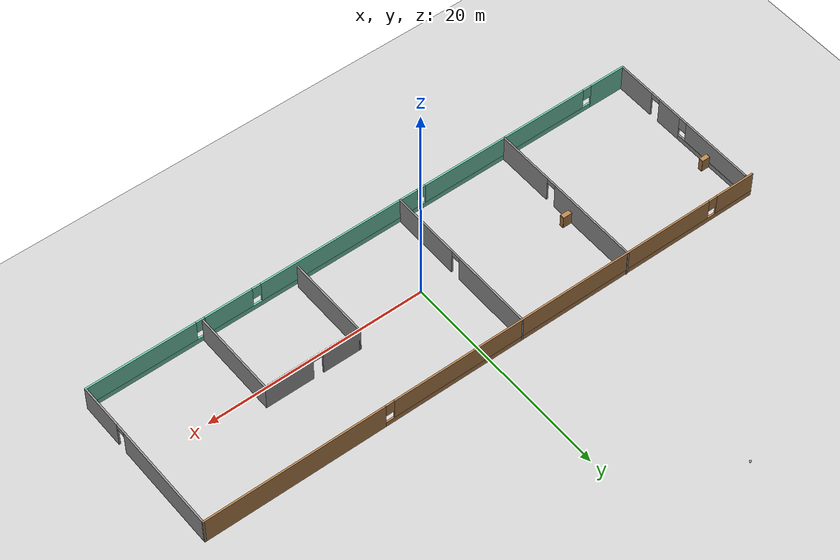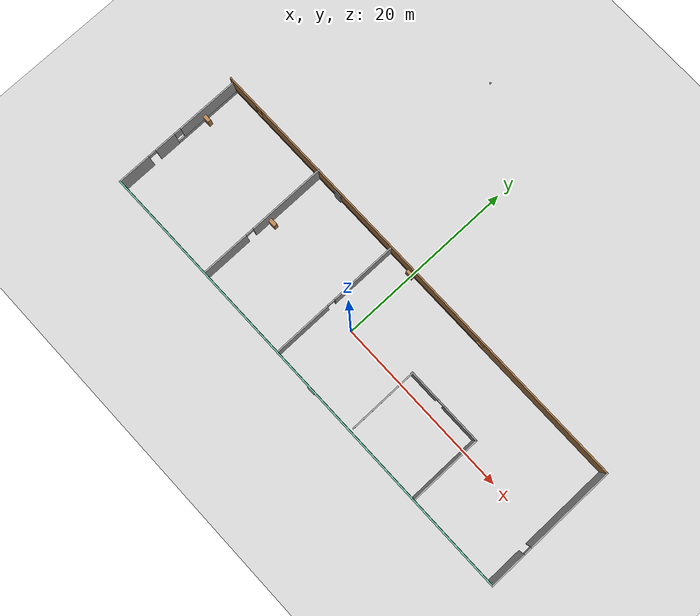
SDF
<sdf version="1.7">
 <world name="default">
  <model name="ground_plane">
   <static>1</static>
   <link name="link">
    <collision name="collision">
     <geometry><plane><normal>0 0 1</normal><size>100 100</size></plane></geometry>
     <surface>
      <contact><collide_bitmask>65535</collide_bitmask></contact>
      <friction><ode><mu>100</mu><mu2>50</mu2></ode></friction>
     </surface>
    </collision>
    <visual name="visual">
     <cast_shadows>0</cast_shadows>
     <geometry><plane><normal>0 0 1</normal><size>100 100</size></plane></geometry>
     <material>
      <script><uri>file://media/materials/scripts/gazebo.material</uri><name>Gazebo/Grey</name></script>
     </material>
    </visual>
   </link>
  </model>
  <model name="mynewbuilding">
   <pose>-0.0857 0.8338 0 0 -0 0</pose>
   <link name="Door_0">
    <collision name="Door_0_Collision">
     <geometry><box><size>0.9 0.17 2</size></box></geometry>
     <pose>0 0 1 0 -0 0</pose>
    </collision>
    <visual name="Door_0_Visual">
     <pose>0 0 1 0 -0 0</pose>
     <geometry><box><size>0.9 0.17 2</size></box></geometry>
     <material>
      <script><uri>file://media/materials/scripts/gazebo.material</uri><name>Gazebo/Grey</name></script>
     </material>
    </visual>
    <pose>-10.5562 7.30056 0 0 -0 0</pose>
   </link>
   <link name="Door_2">
    <collision name="Door_2_Collision">
     <geometry><box><size>0.9 0.17 2</size></box></geometry>
     <pose>0 0 1 0 -0 0</pose>
    </collision>
    <visual name="Door_2_Visual">
     <pose>0 0 1 0 -0 0</pose>
     <geometry><box><size>0.9 0.17 2</size></box></geometry>
     <material>
      <script><uri>file://media/materials/scripts/gazebo.material</uri><name>Gazebo/Grey</name></script>
     </material>
    </visual>
    <pose>1.7212 -7.54488 0 0 -0 0</pose>
   </link>
   <link name="Wall_0">
    <pose>0.25 -7.44583 0 0 -0 0</pose>
    <visual name="Wall_0_Visual_0">
     <pose>-24.2845 0 1.25 0 -0 0</pose>
     <geometry><box><size>3.43107 0.15 2.5</size></box></geometry>
     <material>
      <script><uri>file://media/materials/scripts/gazebo.material</uri><name>Gazebo/Grey</name></script>
      <ambient>0.435294 0.796078 0.67451 1</ambient>
     </material>
     <meta><layer>0</layer></meta>
    </visual>
    <collision name="Wall_0_Collision_0">
     <geometry><box><size>3.43107 0.15 2.5</size></box></geometry>
     <pose>-24.2845 0 1.25 0 -0 0</pose>
    </collision>
    <visual name="Wall_0_Visual_1">
     <pose>1.71554 0 0.25 0 -0 0</pose>
     <geometry><box><size>48.5689 0.15 0.5</size></box></geometry>
     <material>
      <script><uri>file://media/materials/scripts/gazebo.material</uri><name>Gazebo/Grey</name></script>
      <ambient>0.435294 0.796078 0.67451 1</ambient>
     </material>
     <meta><layer>0</layer></meta>
    </visual>
    <collision name="Wall_0_Collision_1">
     <geometry><box><size>48.5689 0.15 0.5</size></box></geometry>
     <pose>1.71554 0 0.25 0 -0 0</pose>
    </collision>
    <visual name="Wall_0_Visual_2">
     <pose>-13.7436 0 1.5 0 -0 0</pose>
     <geometry><box><size>16.0506 0.15 2</size></box></geometry>
     <material>
      <script><uri>file://media/materials/scripts/gazebo.material</uri><name>Gazebo/Grey</name></script>
      <ambient>0.435294 0.796078 0.67451 1</ambient>
     </material>
     <meta><layer>0</layer></meta>
    </visual>
    <collision name="Wall_0_Collision_2">
     <geometry><box><size>16.0506 0.15 2</size></box></geometry>
     <pose>-13.7436 0 1.5 0 -0 0</pose>
    </collision>
    <visual name="Wall_0_Visual_3">
     <pose>2.57933 0 1.5 0 -0 0</pose>
     <geometry><box><size>14.9953 0.15 2</size></box></geometry>
     <material>
      <script><uri>file://media/materials/scripts/gazebo.material</uri><name>Gazebo/Grey</name></script>
      <ambient>0.435294 0.796078 0.67451 1</ambient>
     </material>
     <meta><layer>0</layer></meta>
    </visual>
    <collision name="Wall_0_Collision_3">
     <geometry><box><size>14.9953 0.15 2</size></box></geometry>
     <pose>2.57933 0 1.5 0 -0 0</pose>
    </collision>
    <visual name="Wall_0_Visual_4">
     <pose>13.0626 0 1.5 0 -0 0</pose>
     <geometry><box><size>4.37128 0.15 2</size></box></geometry>
     <material>
      <script><uri>file://media/materials/scripts/gazebo.material</uri><name>Gazebo/Grey</name></script>
      <ambient>0.435294 0.796078 0.67451 1</ambient>
     </material>
     <meta><layer>0</layer></meta>
    </visual>
    <collision name="Wall_0_Collision_4">
     <geometry><box><size>4.37128 0.15 2</size></box></geometry>
     <pose>13.0626 0 1.5 0 -0 0</pose>
    </collision>
    <visual name="Wall_0_Visual_5">
     <pose>21.0241 0 1.5 0 -0 0</pose>
     <geometry><box><size>9.95176 0.15 2</size></box></geometry>
     <material>
      <script><uri>file://media/materials/scripts/gazebo.material</uri><name>Gazebo/Grey</name></script>
      <ambient>0.435294 0.796078 0.67451 1</ambient>
     </material>
     <meta><layer>0</layer></meta>
    </visual>
    <collision name="Wall_0_Collision_5">
     <geometry><box><size>9.95176 0.15 2</size></box></geometry>
     <pose>21.0241 0 1.5 0 -0 0</pose>
    </collision>
    <visual name="Wall_0_Visual_6">
     <pose>-22.1689 0 1.9 0 -0 0</pose>
     <geometry><box><size>0.8 0.15 1.2</size></box></geometry>
     <material>
      <script><uri>file://media/materials/scripts/gazebo.material</uri><name>Gazebo/Grey</name></script>
      <ambient>0.435294 0.796078 0.67451 1</ambient>
     </material>
     <meta><layer>0</layer></meta>
    </visual>
    <collision name="Wall_0_Collision_6">
     <geometry><box><size>0.8 0.15 1.2</size></box></geometry>
     <pose>-22.1689 0 1.9 0 -0 0</pose>
    </collision>
    <visual name="Wall_0_Visual_7">
     <pose>-5.3183 0 1.9 0 -0 0</pose>
     <geometry><box><size>0.8 0.15 1.2</size></box></geometry>
     <material>
      <script><uri>file://media/materials/scripts/gazebo.material</uri><name>Gazebo/Grey</name></script>
      <ambient>0.435294 0.796078 0.67451 1</ambient>
     </material>
     <meta><layer>0</layer></meta>
    </visual>
    <collision name="Wall_0_Collision_7">
     <geometry><box><size>0.8 0.15 1.2</size></box></geometry>
     <pose>-5.3183 0 1.9 0 -0 0</pose>
    </collision>
    <visual name="Wall_0_Visual_8">
     <pose>10.477 0 1.9 0 -0 0</pose>
     <geometry><box><size>0.8 0.15 1.2</size></box></geometry>
     <material>
      <script><uri>file://media/materials/scripts/gazebo.material</uri><name>Gazebo/Grey</name></script>
      <ambient>0.435294 0.796078 0.67451 1</ambient>
     </material>
     <meta><layer>0</layer></meta>
    </visual>
    <collision name="Wall_0_Collision_8">
     <geometry><box><size>0.8 0.15 1.2</size></box></geometry>
     <pose>10.477 0 1.9 0 -0 0</pose>
    </collision>
    <visual name="Wall_0_Visual_9">
     <pose>15.6482 0 1.9 0 -0 0</pose>
     <geometry><box><size>0.8 0.15 1.2</size></box></geometry>
     <material>
      <script><uri>file://media/materials/scripts/gazebo.material</uri><name>Gazebo/Grey</name></script>
      <ambient>0.435294 0.796078 0.67451 1</ambient>
     </material>
     <meta><layer>0</layer></meta>
    </visual>
    <collision name="Wall_0_Collision_9">
     <geometry><box><size>0.8 0.15 1.2</size></box></geometry>
     <pose>15.6482 0 1.9 0 -0 0</pose>
    </collision>
   </link>
   <link name="Wall_11">
    <pose>-25.675 -0.145833 0 0 -0 1.5708</pose>
    <visual name="Wall_11_Visual_0">
     <pose>-5.5013 0 1.25 0 -0 0</pose>
     <geometry><box><size>3.7474 0.15 2.5</size></box></geometry>
     <material>
      <script><uri>file://media/materials/scripts/gazebo.material</uri><name>Gazebo/Grey</name></script>
      <ambient>1 1 1 1</ambient>
     </material>
     <meta><layer>0</layer></meta>
    </visual>
    <collision name="Wall_11_Collision_0">
     <geometry><box><size>3.7474 0.15 2.5</size></box></geometry>
     <pose>-5.5013 0 1.25 0 -0 0</pose>
    </collision>
    <visual name="Wall_11_Visual_1">
     <pose>-1.51679 0 1.25 0 -0 0</pose>
     <geometry><box><size>2.42163 0.15 2.5</size></box></geometry>
     <material>
      <script><uri>file://media/materials/scripts/gazebo.material</uri><name>Gazebo/Grey</name></script>
      <ambient>1 1 1 1</ambient>
     </material>
     <meta><layer>0</layer></meta>
    </visual>
    <collision name="Wall_11_Collision_1">
     <geometry><box><size>2.42163 0.15 2.5</size></box></geometry>
     <pose>-1.51679 0 1.25 0 -0 0</pose>
    </collision>
    <visual name="Wall_11_Visual_2">
     <pose>3.53451 0 0.25 0 -0 0</pose>
     <geometry><box><size>7.68097 0.15 0.5</size></box></geometry>
     <material>
      <script><uri>file://media/materials/scripts/gazebo.material</uri><name>Gazebo/Grey</name></script>
      <ambient>1 1 1 1</ambient>
     </material>
     <meta><layer>0</layer></meta>
    </visual>
    <collision name="Wall_11_Collision_2">
     <geometry><box><size>7.68097 0.15 0.5</size></box></geometry>
     <pose>3.53451 0 0.25 0 -0 0</pose>
    </collision>
    <visual name="Wall_11_Visual_3">
     <pose>3.93451 0 1.5 0 -0 0</pose>
     <geometry><box><size>6.88097 0.15 2</size></box></geometry>
     <material>
      <script><uri>file://media/materials/scripts/gazebo.material</uri><name>Gazebo/Grey</name></script>
      <ambient>1 1 1 1</ambient>
     </material>
     <meta><layer>0</layer></meta>
    </visual>
    <collision name="Wall_11_Collision_3">
     <geometry><box><size>6.88097 0.15 2</size></box></geometry>
     <pose>3.93451 0 1.5 0 -0 0</pose>
    </collision>
    <visual name="Wall_11_Visual_4">
     <pose>0.094027 0 1.9 0 -0 0</pose>
     <geometry><box><size>0.8 0.15 1.2</size></box></geometry>
     <material>
      <script><uri>file://media/materials/scripts/gazebo.material</uri><name>Gazebo/Grey</name></script>
      <ambient>1 1 1 1</ambient>
     </material>
     <meta><layer>0</layer></meta>
    </visual>
    <collision name="Wall_11_Collision_4">
     <geometry><box><size>0.8 0.15 1.2</size></box></geometry>
     <pose>0.094027 0 1.9 0 -0 0</pose>
    </collision>
    <visual name="Wall_11_Visual_5">
     <pose>-3.1776 0 2.25 0 -0 0</pose>
     <geometry><box><size>0.9 0.15 0.5</size></box></geometry>
     <material>
      <script><uri>file://media/materials/scripts/gazebo.material</uri><name>Gazebo/Grey</name></script>
      <ambient>1 1 1 1</ambient>
     </material>
     <meta><layer>0</layer></meta>
    </visual>
    <collision name="Wall_11_Collision_5">
     <geometry><box><size>0.9 0.15 0.5</size></box></geometry>
     <pose>-3.1776 0 2.25 0 -0 0</pose>
    </collision>
   </link>
   <link name="Wall_14">
    <pose>-13.4057 0.020833 0 0 -0 1.5708</pose>
    <visual name="Wall_14_Visual_0">
     <pose>-4.78525 0 1.25 0 -0 0</pose>
     <geometry><box><size>5.4295 0.15 2.5</size></box></geometry>
     <material>
      <script><uri>file://media/materials/scripts/gazebo.material</uri><name>Gazebo/Grey</name></script>
      <ambient>1 1 1 1</ambient>
     </material>
     <meta><layer>0</layer></meta>
    </visual>
    <collision name="Wall_14_Collision_0">
     <geometry><box><size>5.4295 0.15 2.5</size></box></geometry>
     <pose>-4.78525 0 1.25 0 -0 0</pose>
    </collision>
    <visual name="Wall_14_Visual_1">
     <pose>3.16475 0 1.25 0 -0 0</pose>
     <geometry><box><size>8.6705 0.15 2.5</size></box></geometry>
     <material>
      <script><uri>file://media/materials/scripts/gazebo.material</uri><name>Gazebo/Grey</name></script>
      <ambient>1 1 1 1</ambient>
     </material>
     <meta><layer>0</layer></meta>
    </visual>
    <collision name="Wall_14_Collision_1">
     <geometry><box><size>8.6705 0.15 2.5</size></box></geometry>
     <pose>3.16475 0 1.25 0 -0 0</pose>
    </collision>
    <visual name="Wall_14_Visual_2">
     <pose>-1.6205 0 2.25 0 -0 0</pose>
     <geometry><box><size>0.9 0.15 0.5</size></box></geometry>
     <material>
      <script><uri>file://media/materials/scripts/gazebo.material</uri><name>Gazebo/Grey</name></script>
      <ambient>1 1 1 1</ambient>
     </material>
     <meta><layer>0</layer></meta>
    </visual>
    <collision name="Wall_14_Collision_2">
     <geometry><box><size>0.9 0.15 0.5</size></box></geometry>
     <pose>-1.6205 0 2.25 0 -0 0</pose>
    </collision>
   </link>
   <link name="Wall_16">
    <pose>-3.02793 -0.014346 0 0 -0 1.5708</pose>
    <visual name="Wall_16_Visual_0">
     <pose>-4.22239 0 1.25 0 -0 0</pose>
     <geometry><box><size>6.55522 0.15 2.5</size></box></geometry>
     <material>
      <script><uri>file://media/materials/scripts/gazebo.material</uri><name>Gazebo/Grey</name></script>
      <ambient>1 1 1 1</ambient>
     </material>
     <meta><layer>0</layer></meta>
    </visual>
    <collision name="Wall_16_Collision_0">
     <geometry><box><size>6.55522 0.15 2.5</size></box></geometry>
     <pose>-4.22239 0 1.25 0 -0 0</pose>
    </collision>
    <visual name="Wall_16_Visual_1">
     <pose>3.72761 0 1.25 0 -0 0</pose>
     <geometry><box><size>7.54478 0.15 2.5</size></box></geometry>
     <material>
      <script><uri>file://media/materials/scripts/gazebo.material</uri><name>Gazebo/Grey</name></script>
      <ambient>1 1 1 1</ambient>
     </material>
     <meta><layer>0</layer></meta>
    </visual>
    <collision name="Wall_16_Collision_1">
     <geometry><box><size>7.54478 0.15 2.5</size></box></geometry>
     <pose>3.72761 0 1.25 0 -0 0</pose>
    </collision>
    <visual name="Wall_16_Visual_2">
     <pose>-0.494784 0 2.25 0 -0 0</pose>
     <geometry><box><size>0.9 0.15 0.5</size></box></geometry>
     <material>
      <script><uri>file://media/materials/scripts/gazebo.material</uri><name>Gazebo/Grey</name></script>
      <ambient>1 1 1 1</ambient>
     </material>
     <meta><layer>0</layer></meta>
    </visual>
    <collision name="Wall_16_Collision_2">
     <geometry><box><size>0.9 0.15 0.5</size></box></geometry>
     <pose>-0.494784 0 2.25 0 -0 0</pose>
    </collision>
   </link>
   <link name="Wall_18">
    <collision name="Wall_18_Collision">
     <geometry><box><size>7.75 0.15 2.5</size></box></geometry>
     <pose>0 0 1.25 0 -0 0</pose>
    </collision>
    <visual name="Wall_18_Visual">
     <pose>0 0 1.25 0 -0 0</pose>
     <geometry><box><size>7.75 0.15 2.5</size></box></geometry>
     <material>
      <script><uri>file://media/materials/scripts/gazebo.material</uri><name>Gazebo/Grey</name></script>
      <ambient>1 1 1 1</ambient>
     </material>
     <meta><layer>0</layer></meta>
    </visual>
    <pose>7.10355 -3.2172 0 0 -0 1.5708</pose>
   </link>
   <link name="Wall_19">
    <pose>11.4035 0.5828 0 0 -0 0</pose>
    <visual name="Wall_19_Visual_0">
     <pose>-2.64702 0 1.25 0 -0 0</pose>
     <geometry><box><size>3.52632 0.15 2.5</size></box></geometry>
     <material>
      <script><uri>file://media/materials/scripts/gazebo.material</uri><name>Gazebo/Grey</name></script>
      <ambient>1 1 1 1</ambient>
     </material>
     <meta><layer>0</layer></meta>
    </visual>
    <collision name="Wall_19_Collision_0">
     <geometry><box><size>3.52632 0.15 2.5</size></box></geometry>
     <pose>-2.64702 0 1.25 0 -0 0</pose>
    </collision>
    <visual name="Wall_19_Visual_1">
     <pose>2.21316 0 1.25 0 -0 0</pose>
     <geometry><box><size>4.39404 0.15 2.5</size></box></geometry>
     <material>
      <script><uri>file://media/materials/scripts/gazebo.material</uri><name>Gazebo/Grey</name></script>
      <ambient>1 1 1 1</ambient>
     </material>
     <meta><layer>0</layer></meta>
    </visual>
    <collision name="Wall_19_Collision_1">
     <geometry><box><size>4.39404 0.15 2.5</size></box></geometry>
     <pose>2.21316 0 1.25 0 -0 0</pose>
    </collision>
    <visual name="Wall_19_Visual_2">
     <pose>-0.433857 0 2.25 0 -0 0</pose>
     <geometry><box><size>0.9 0.15 0.5</size></box></geometry>
     <material>
      <script><uri>file://media/materials/scripts/gazebo.material</uri><name>Gazebo/Grey</name></script>
      <ambient>1 1 1 1</ambient>
     </material>
     <meta><layer>0</layer></meta>
    </visual>
    <collision name="Wall_19_Collision_2">
     <geometry><box><size>0.9 0.15 0.5</size></box></geometry>
     <pose>-0.433857 0 2.25 0 -0 0</pose>
    </collision>
   </link>
   <link name="Wall_20">
    <collision name="Wall_20_Collision">
     <geometry><box><size>8 0.15 2.5</size></box></geometry>
     <pose>0 0 1.25 0 -0 0</pose>
    </collision>
    <visual name="Wall_20_Visual">
     <pose>0 0 1.25 0 -0 0</pose>
     <geometry><box><size>8 0.15 2.5</size></box></geometry>
     <material>
      <script><uri>file://media/materials/scripts/gazebo.material</uri><name>Gazebo/Grey</name></script>
      <ambient>1 1 1 1</ambient>
     </material>
     <meta><layer>0</layer></meta>
    </visual>
    <pose>15.7387 -3.3422 0 0 -0 -1.5708</pose>
   </link>
   <link name="Wall_8">
    <pose>26.175 -0.020833 0 0 -0 1.5708</pose>
    <visual name="Wall_8_Visual_0">
     <pose>-5.41523 0 1.25 0 -0 0</pose>
     <geometry><box><size>4.16955 0.15 2.5</size></box></geometry>
     <material>
      <script><uri>file://media/materials/scripts/gazebo.material</uri><name>Gazebo/Grey</name></script>
      <ambient>1 1 1 1</ambient>
     </material>
     <meta><layer>0</layer></meta>
    </visual>
    <collision name="Wall_8_Collision_0">
     <geometry><box><size>4.16955 0.15 2.5</size></box></geometry>
     <pose>-5.41523 0 1.25 0 -0 0</pose>
    </collision>
    <visual name="Wall_8_Visual_1">
     <pose>2.53477 0 1.25 0 -0 0</pose>
     <geometry><box><size>9.93045 0.15 2.5</size></box></geometry>
     <material>
      <script><uri>file://media/materials/scripts/gazebo.material</uri><name>Gazebo/Grey</name></script>
      <ambient>1 1 1 1</ambient>
     </material>
     <meta><layer>0</layer></meta>
    </visual>
    <collision name="Wall_8_Collision_1">
     <geometry><box><size>9.93045 0.15 2.5</size></box></geometry>
     <pose>2.53477 0 1.25 0 -0 0</pose>
    </collision>
    <visual name="Wall_8_Visual_2">
     <pose>-2.88045 0 2.25 0 -0 0</pose>
     <geometry><box><size>0.9 0.15 0.5</size></box></geometry>
     <material>
      <script><uri>file://media/materials/scripts/gazebo.material</uri><name>Gazebo/Grey</name></script>
      <ambient>1 1 1 1</ambient>
     </material>
     <meta><layer>0</layer></meta>
    </visual>
    <collision name="Wall_8_Collision_2">
     <geometry><box><size>0.9 0.15 0.5</size></box></geometry>
     <pose>-2.88045 0 2.25 0 -0 0</pose>
    </collision>
   </link>
   <link name="Wall_9">
    <pose>-0 7.40417 0 0 -0 3.14159</pose>
    <visual name="Wall_9_Visual_0">
     <pose>-18.0729 0 1.25 0 -0 0</pose>
     <geometry><box><size>16.3543 0.15 2.5</size></box></geometry>
     <material>
      <script><uri>file://media/materials/scripts/gazebo.material</uri><name>Gazebo/Wood</name></script>
      <ambient>1 1 1 1</ambient>
     </material>
     <meta><layer>0</layer></meta>
    </visual>
    <collision name="Wall_9_Collision_0">
     <geometry><box><size>16.3543 0.15 2.5</size></box></geometry>
     <pose>-18.0729 0 1.25 0 -0 0</pose>
    </collision>
    <visual name="Wall_9_Visual_1">
     <pose>8.17715 0 0.25 0 -0 0</pose>
     <geometry><box><size>36.1457 0.15 0.5</size></box></geometry>
     <material>
      <script><uri>file://media/materials/scripts/gazebo.material</uri><name>Gazebo/Wood</name></script>
      <ambient>1 1 1 1</ambient>
     </material>
     <meta><layer>0</layer></meta>
    </visual>
    <collision name="Wall_9_Collision_1">
     <geometry><box><size>36.1457 0.15 0.5</size></box></geometry>
     <pose>8.17715 0 0.25 0 -0 0</pose>
    </collision>
    <visual name="Wall_9_Visual_2">
     <pose>6.29956 0 1.5 0 -0 0</pose>
     <geometry><box><size>30.7905 0.15 2</size></box></geometry>
     <material>
      <script><uri>file://media/materials/scripts/gazebo.material</uri><name>Gazebo/Wood</name></script>
      <ambient>1 1 1 1</ambient>
     </material>
     <meta><layer>0</layer></meta>
    </visual>
    <collision name="Wall_9_Collision_2">
     <geometry><box><size>30.7905 0.15 2</size></box></geometry>
     <pose>6.29956 0 1.5 0 -0 0</pose>
    </collision>
    <visual name="Wall_9_Visual_3">
     <pose>24.3724 0 1.5 0 -0 0</pose>
     <geometry><box><size>3.75518 0.15 2</size></box></geometry>
     <material>
      <script><uri>file://media/materials/scripts/gazebo.material</uri><name>Gazebo/Wood</name></script>
      <ambient>1 1 1 1</ambient>
     </material>
     <meta><layer>0</layer></meta>
    </visual>
    <collision name="Wall_9_Collision_3">
     <geometry><box><size>3.75518 0.15 2</size></box></geometry>
     <pose>24.3724 0 1.5 0 -0 0</pose>
    </collision>
    <visual name="Wall_9_Visual_4">
     <pose>-9.4957 0 1.9 0 -0 0</pose>
     <geometry><box><size>0.8 0.15 1.2</size></box></geometry>
     <material>
      <script><uri>file://media/materials/scripts/gazebo.material</uri><name>Gazebo/Wood</name></script>
      <ambient>1 1 1 1</ambient>
     </material>
     <meta><layer>0</layer></meta>
    </visual>
    <collision name="Wall_9_Collision_4">
     <geometry><box><size>0.8 0.15 1.2</size></box></geometry>
     <pose>-9.4957 0 1.9 0 -0 0</pose>
    </collision>
    <visual name="Wall_9_Visual_5">
     <pose>22.0948 0 1.9 0 -0 0</pose>
     <geometry><box><size>0.8 0.15 1.2</size></box></geometry>
     <material>
      <script><uri>file://media/materials/scripts/gazebo.material</uri><name>Gazebo/Wood</name></script>
      <ambient>1 1 1 1</ambient>
     </material>
     <meta><layer>0</layer></meta>
    </visual>
    <collision name="Wall_9_Collision_5">
     <geometry><box><size>0.8 0.15 1.2</size></box></geometry>
     <pose>22.0948 0 1.9 0 -0 0</pose>
    </collision>
   </link>
   <static>1</static>
  </model>
  <model name="bookshelf_0">
   <static>1</static>
   <link name="link">
    <inertial><mass>1</mass></inertial>
    <collision name="back">
     <pose>0 0.005 0.6 0 -0 0</pose>
     <geometry><box><size>0.9 0.01 1.2</size></box></geometry>
    </collision>
    <visual name="visual1">
     <pose>0 0.005 0.6 0 -0 0</pose>
     <geometry><box><size>0.9 0.01 1.2</size></box></geometry>
     <material>
      <script><uri>file://media/materials/scripts/gazebo.material</uri><name>Gazebo/Wood</name></script>
     </material>
    </visual>
    <collision name="left_side">
     <pose>0.45 -0.195 0.6 0 -0 0</pose>
     <geometry><box><size>0.02 0.4 1.2</size></box></geometry>
    </collision>
    <visual name="visual2">
     <pose>0.45 -0.195 0.6 0 -0 0</pose>
     <geometry><box><size>0.02 0.4 1.2</size></box></geometry>
     <material>
      <script><uri>file://media/materials/scripts/gazebo.material</uri><name>Gazebo/Wood</name></script>
     </material>
    </visual>
    <collision name="right_side">
     <pose>-0.45 -0.195 0.6 0 -0 0</pose>
     <geometry><box><size>0.02 0.4 1.2</size></box></geometry>
    </collision>
    <visual name="visual3">
     <pose>-0.45 -0.195 0.6 0 -0 0</pose>
     <geometry><box><size>0.02 0.4 1.2</size></box></geometry>
     <material>
      <script><uri>file://media/materials/scripts/gazebo.material</uri><name>Gazebo/Wood</name></script>
     </material>
    </visual>
    <collision name="bottom">
     <pose>0 -0.195 0.03 0 -0 0</pose>
     <geometry><box><size>0.88 0.4 0.06</size></box></geometry>
    </collision>
    <visual name="visual4">
     <pose>0 -0.195 0.03 0 -0 0</pose>
     <geometry><box><size>0.88 0.4 0.06</size></box></geometry>
     <material>
      <script><uri>file://media/materials/scripts/gazebo.material</uri><name>Gazebo/Wood</name></script>
     </material>
    </visual>
    <collision name="top">
     <pose>0 -0.195 1.19 0 -0 0</pose>
     <geometry><box><size>0.88 0.4 0.02</size></box></geometry>
    </collision>
    <visual name="visual5">
     <pose>0 -0.195 1.19 0 -0 0</pose>
     <geometry><box><size>0.88 0.4 0.02</size></box></geometry>
     <material>
      <script><uri>file://media/materials/scripts/gazebo.material</uri><name>Gazebo/Wood</name></script>
     </material>
    </visual>
    <collision name="low_shelf">
     <pose>0 -0.195 0.43 0 -0 0</pose>
     <geometry><box><size>0.88 0.4 0.02</size></box></geometry>
    </collision>
    <visual name="visual6">
     <pose>0 -0.195 0.43 0 -0 0</pose>
     <geometry><box><size>0.88 0.4 0.02</size></box></geometry>
     <material>
      <script><uri>file://media/materials/scripts/gazebo.material</uri><name>Gazebo/Wood</name></script>
     </material>
    </visual>
    <collision name="high_shelf">
     <pose>0 -0.195 0.8 0 -0 0</pose>
     <geometry><box><size>0.88 0.4 0.02</size></box></geometry>
    </collision>
    <visual name="visual7">
     <pose>0 -0.195 0.8 0 -0 0</pose>
     <geometry><box><size>0.88 0.4 0.02</size></box></geometry>
     <material>
      <script><uri>file://media/materials/scripts/gazebo.material</uri><name>Gazebo/Wood</name></script>
     </material>
    </visual>
   </link>
   <pose>-13.0366 1.81294 0 0 -0 0</pose>
  </model>
  <model name="bookshelf_1">
   <static>1</static>
   <link name="link">
    <inertial><mass>1</mass></inertial>
    <collision name="back">
     <pose>0 0.005 0.6 0 -0 0</pose>
     <geometry><box><size>0.9 0.01 1.2</size></box></geometry>
    </collision>
    <visual name="visual1">
     <pose>0 0.005 0.6 0 -0 0</pose>
     <geometry><box><size>0.9 0.01 1.2</size></box></geometry>
     <material>
      <script><uri>file://media/materials/scripts/gazebo.material</uri><name>Gazebo/Wood</name></script>
     </material>
    </visual>
    <collision name="left_side">
     <pose>0.45 -0.195 0.6 0 -0 0</pose>
     <geometry><box><size>0.02 0.4 1.2</size></box></geometry>
    </collision>
    <visual name="visual2">
     <pose>0.45 -0.195 0.6 0 -0 0</pose>
     <geometry><box><size>0.02 0.4 1.2</size></box></geometry>
     <material>
      <script><uri>file://media/materials/scripts/gazebo.material</uri><name>Gazebo/Wood</name></script>
     </material>
    </visual>
    <collision name="right_side">
     <pose>-0.45 -0.195 0.6 0 -0 0</pose>
     <geometry><box><size>0.02 0.4 1.2</size></box></geometry>
    </collision>
    <visual name="visual3">
     <pose>-0.45 -0.195 0.6 0 -0 0</pose>
     <geometry><box><size>0.02 0.4 1.2</size></box></geometry>
     <material>
      <script><uri>file://media/materials/scripts/gazebo.material</uri><name>Gazebo/Wood</name></script>
     </material>
    </visual>
    <collision name="bottom">
     <pose>0 -0.195 0.03 0 -0 0</pose>
     <geometry><box><size>0.88 0.4 0.06</size></box></geometry>
    </collision>
    <visual name="visual4">
     <pose>0 -0.195 0.03 0 -0 0</pose>
     <geometry><box><size>0.88 0.4 0.06</size></box></geometry>
     <material>
      <script><uri>file://media/materials/scripts/gazebo.material</uri><name>Gazebo/Wood</name></script>
     </material>
    </visual>
    <collision name="top">
     <pose>0 -0.195 1.19 0 -0 0</pose>
     <geometry><box><size>0.88 0.4 0.02</size></box></geometry>
    </collision>
    <visual name="visual5">
     <pose>0 -0.195 1.19 0 -0 0</pose>
     <geometry><box><size>0.88 0.4 0.02</size></box></geometry>
     <material>
      <script><uri>file://media/materials/scripts/gazebo.material</uri><name>Gazebo/Wood</name></script>
     </material>
    </visual>
    <collision name="low_shelf">
     <pose>0 -0.195 0.43 0 -0 0</pose>
     <geometry><box><size>0.88 0.4 0.02</size></box></geometry>
    </collision>
    <visual name="visual6">
     <pose>0 -0.195 0.43 0 -0 0</pose>
     <geometry><box><size>0.88 0.4 0.02</size></box></geometry>
     <material>
      <script><uri>file://media/materials/scripts/gazebo.material</uri><name>Gazebo/Wood</name></script>
     </material>
    </visual>
    <collision name="high_shelf">
     <pose>0 -0.195 0.8 0 -0 0</pose>
     <geometry><box><size>0.88 0.4 0.02</size></box></geometry>
    </collision>
    <visual name="visual7">
     <pose>0 -0.195 0.8 0 -0 0</pose>
     <geometry><box><size>0.88 0.4 0.02</size></box></geometry>
     <material>
      <script><uri>file://media/materials/scripts/gazebo.material</uri><name>Gazebo/Wood</name></script>
     </material>
    </visual>
   </link>
   <pose>-25.3801 4.1296 0 0 -0 0</pose>
  </model>
  <model name="bookshelf_2">
   <static>1</static>
   <link name="link">
    <inertial><mass>1</mass></inertial>
    <collision name="back">
     <pose>0 0.005 0.6 0 -0 0</pose>
     <geometry><box><size>0.9 0.01 1.2</size></box></geometry>
    </collision>
    <visual name="visual1">
     <pose>0 0.005 0.6 0 -0 0</pose>
     <geometry><box><size>0.9 0.01 1.2</size></box></geometry>
     <material>
      <script><uri>file://media/materials/scripts/gazebo.material</uri><name>Gazebo/Wood</name></script>
     </material>
    </visual>
    <collision name="left_side">
     <pose>0.45 -0.195 0.6 0 -0 0</pose>
     <geometry><box><size>0.02 0.4 1.2</size></box></geometry>
    </collision>
    <visual name="visual2">
     <pose>0.45 -0.195 0.6 0 -0 0</pose>
     <geometry><box><size>0.02 0.4 1.2</size></box></geometry>
     <material>
      <script><uri>file://media/materials/scripts/gazebo.material</uri><name>Gazebo/Wood</name></script>
     </material>
    </visual>
    <collision name="right_side">
     <pose>-0.45 -0.195 0.6 0 -0 0</pose>
     <geometry><box><size>0.02 0.4 1.2</size></box></geometry>
    </collision>
    <visual name="visual3">
     <pose>-0.45 -0.195 0.6 0 -0 0</pose>
     <geometry><box><size>0.02 0.4 1.2</size></box></geometry>
     <material>
      <script><uri>file://media/materials/scripts/gazebo.material</uri><name>Gazebo/Wood</name></script>
     </material>
    </visual>
    <collision name="bottom">
     <pose>0 -0.195 0.03 0 -0 0</pose>
     <geometry><box><size>0.88 0.4 0.06</size></box></geometry>
    </collision>
    <visual name="visual4">
     <pose>0 -0.195 0.03 0 -0 0</pose>
     <geometry><box><size>0.88 0.4 0.06</size></box></geometry>
     <material>
      <script><uri>file://media/materials/scripts/gazebo.material</uri><name>Gazebo/Wood</name></script>
     </material>
    </visual>
    <collision name="top">
     <pose>0 -0.195 1.19 0 -0 0</pose>
     <geometry><box><size>0.88 0.4 0.02</size></box></geometry>
    </collision>
    <visual name="visual5">
     <pose>0 -0.195 1.19 0 -0 0</pose>
     <geometry><box><size>0.88 0.4 0.02</size></box></geometry>
     <material>
      <script><uri>file://media/materials/scripts/gazebo.material</uri><name>Gazebo/Wood</name></script>
     </material>
    </visual>
    <collision name="low_shelf">
     <pose>0 -0.195 0.43 0 -0 0</pose>
     <geometry><box><size>0.88 0.4 0.02</size></box></geometry>
    </collision>
    <visual name="visual6">
     <pose>0 -0.195 0.43 0 -0 0</pose>
     <geometry><box><size>0.88 0.4 0.02</size></box></geometry>
     <material>
      <script><uri>file://media/materials/scripts/gazebo.material</uri><name>Gazebo/Wood</name></script>
     </material>
    </visual>
    <collision name="high_shelf">
     <pose>0 -0.195 0.8 0 -0 0</pose>
     <geometry><box><size>0.88 0.4 0.02</size></box></geometry>
    </collision>
    <visual name="visual7">
     <pose>0 -0.195 0.8 0 -0 0</pose>
     <geometry><box><size>0.88 0.4 0.02</size></box></geometry>
     <material>
      <script><uri>file://media/materials/scripts/gazebo.material</uri><name>Gazebo/Wood</name></script>
     </material>
    </visual>
   </link>
   <pose>-0.136293 8.21118 0 0 -0 0</pose>
  </model>
  <model name="unit_sphere">
   <link name="link">
    <inertial>
     <mass>1</mass>
     <inertia><ixx>0.1</ixx><ixy>0</ixy><ixz>0</ixz><iyy>0.1</iyy><iyz>0</iyz><izz>0.1</izz></inertia>
    </inertial>
    <visual name="visual">
     <geometry><sphere><radius>0.1</radius></sphere></geometry>
     <material>
      <script><name>Gazebo/Grey</name><uri>file://media/materials/scripts/gazebo.material</uri></script>
      <shader type="pixel"><normal_map>__default__</normal_map></shader>
      <ambient>1 1 1 1</ambient>
      <diffuse>1 1 1 1</diffuse>
      <specular>1 1 1 1</specular>
      <emissive>1 1 1 1</emissive>
     </material>
    </visual>
    <collision name="collision">
     <geometry><sphere><radius>0.1</radius></sphere></geometry>
     <surface>
      <friction>
       <ode><mu>1</mu><mu2>1</mu2><fdir1>0 0 0</fdir1><slip1>0</slip1><slip2>0</slip2></ode>
       <torsional>
        <coefficient>1</coefficient>
        <patch_radius>0</patch_radius>
        <surface_radius>0</surface_radius>
        <use_patch_radius>1</use_patch_radius>
        <ode><slip>0</slip></ode>
       </torsional>
      </friction>
      <bounce><restitution_coefficient>0</restitution_coefficient><threshold>1e+06</threshold></bounce>
      <contact>
       <collide_without_contact>0</collide_without_contact>
       <collide_without_contact_bitmask>1</collide_without_contact_bitmask>
       <collide_bitmask>1</collide_bitmask>
       <ode>
        <soft_cfm>0</soft_cfm>
        <soft_erp>0.2</soft_erp>
        <kp>1e+13</kp>
        <kd>1</kd>
        <max_vel>0.01</max_vel>
        <min_depth>0</min_depth>
       </ode>
       <bullet>
        <split_impulse>1</split_impulse>
        <split_impulse_penetration_threshold>-0.01</split_impulse_penetration_threshold>
        <soft_cfm>0</soft_cfm>
        <soft_erp>0.2</soft_erp>
        <kp>1e+13</kp>
        <kd>1</kd>
       </bullet>
      </contact>
     </surface>
    </collision>
   </link>
   <static>0</static>
   <pose>-8.87939 27.4164 0.5 0 -0 0</pose>
  </model>
 </world>
</sdf>
